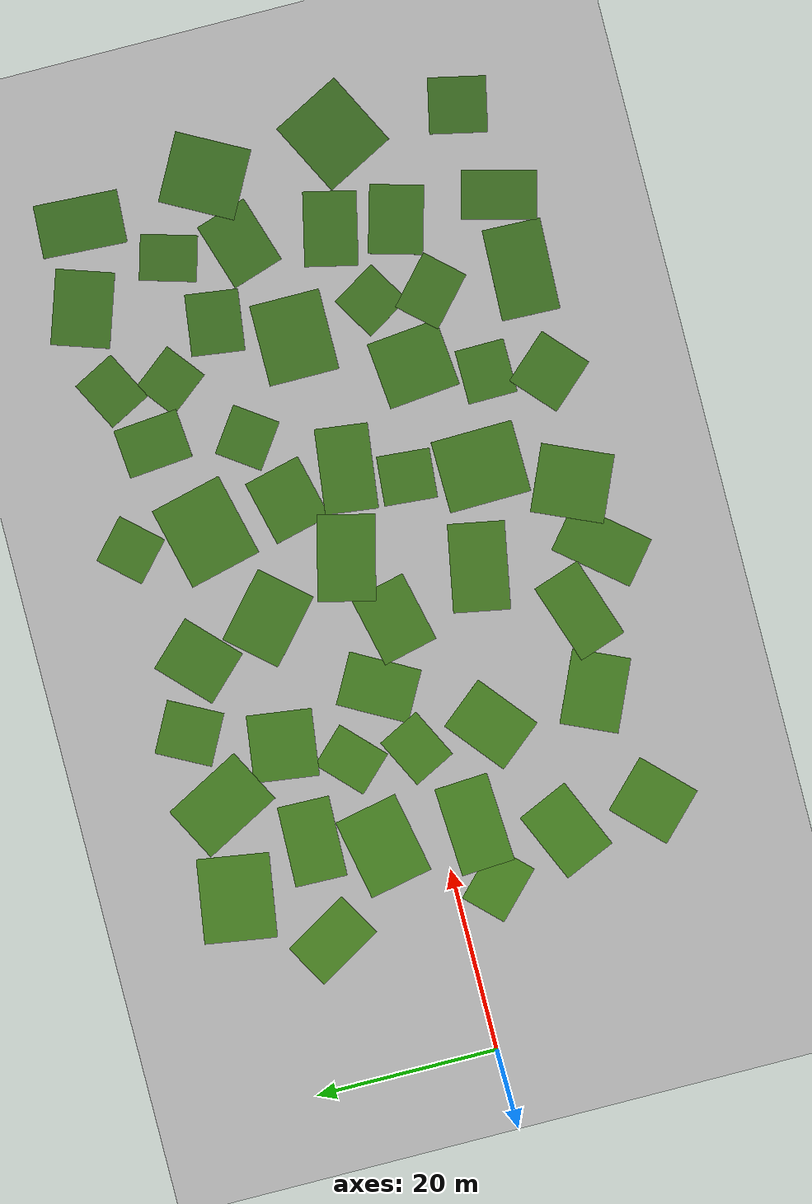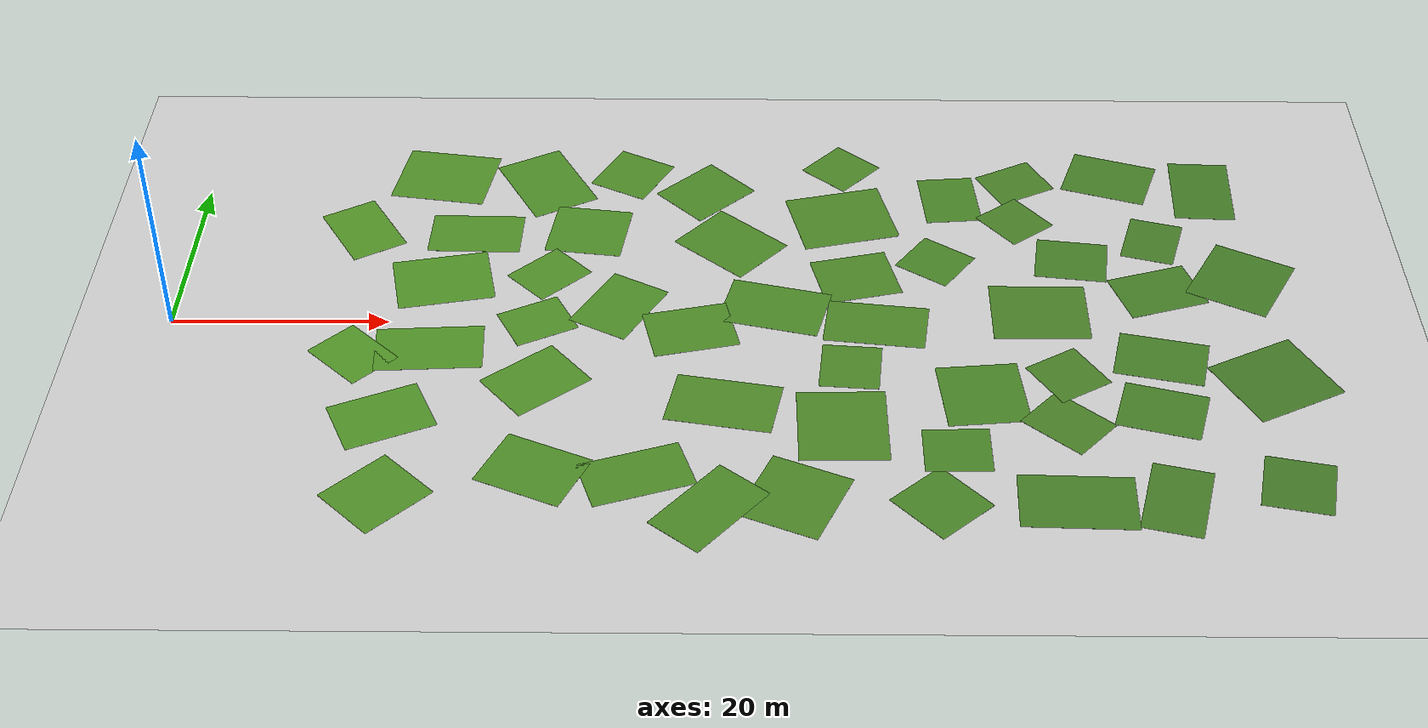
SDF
<?xml version="1.0" encoding="UTF-8"?>
<sdf version="1.9">
  <world name="default">
    <physics type="ode">
      <max_step_size>0.004</max_step_size>
      <real_time_factor>1.0</real_time_factor>
      <real_time_update_rate>250</real_time_update_rate>
    </physics>
    <gravity>0 0 -9.8</gravity>
    <magnetic_field>6e-06 2.3e-05 -4.2e-05</magnetic_field>
    <atmosphere type="adiabatic"/>
    <scene>
      <grid>false</grid>
      <ambient>0.4 0.4 0.4 1</ambient>
      <background>0.7 0.7 0.7 1</background>
      <shadows>true</shadows>
    </scene>
    <model name="ground_plane">
      <static>true</static>
      <link name="link">
        <collision name="collision">
          <geometry><plane><normal>0 0 1</normal><size>1 1</size></plane></geometry>
          <surface><friction><ode/></friction><bounce/><contact/></surface>
        </collision>
        <visual name="visual">
          <geometry><plane><normal>0 0 1</normal><size>500 500</size></plane></geometry>
          <material><ambient>0.8 0.8 0.8 1</ambient><diffuse>0.8 0.8 0.8 1</diffuse><specular>0.8 0.8 0.8 1</specular></material>
        </visual>
        <pose>0 0 0 0 -0 0</pose>
        <inertial><pose>0 0 0 0 -0 0</pose><mass>1</mass><inertia><ixx>1</ixx><ixy>0</ixy><ixz>0</ixz><iyy>1</iyy><iyz>0</iyz><izz>1</izz></inertia></inertial>
        <enable_wind>false</enable_wind>
      </link>
      <pose>0 0 0 0 -0 0</pose>
      <self_collide>false</self_collide>
    </model>

    <model name="m_0">
      <static>true</static>
      <pose>69.4 -23.7 0.0030 0 0 2.31</pose>
      <link name="link">
        <collision name="c"><geometry><box><size>6.4 6.1 0.0060</size></box></geometry></collision>
        <visual name="v"><geometry><box><size>6.4 6.1 0.0060</size></box></geometry>
          <material><ambient>0.23 0.46 0.12 1</ambient><diffuse>0.28 0.51 0.15 1</diffuse></material>
        </visual>
      </link>
    </model>
    <model name="m_1">
      <static>true</static>
      <pose>72.5 19.6 0.0030 0 0 0.09</pose>
      <link name="link">
        <collision name="c"><geometry><box><size>5.4 7.1 0.0060</size></box></geometry></collision>
        <visual name="v"><geometry><box><size>5.4 7.1 0.0060</size></box></geometry>
          <material><ambient>0.23 0.46 0.12 1</ambient><diffuse>0.28 0.51 0.15 1</diffuse></material>
        </visual>
      </link>
    </model>
    <model name="m_2">
      <static>true</static>
      <pose>33.6 0.3 0.0030 0 0 2.04</pose>
      <link name="link">
        <collision name="c"><geometry><box><size>5.1 6.0 0.0060</size></box></geometry></collision>
        <visual name="v"><geometry><box><size>5.1 6.0 0.0060</size></box></geometry>
          <material><ambient>0.26 0.51 0.12 1</ambient><diffuse>0.31 0.56 0.15 1</diffuse></material>
        </visual>
      </link>
    </model>
    <model name="m_3">
      <static>true</static>
      <pose>61.3 -14.0 0.0030 0 0 0.02</pose>
      <link name="link">
        <collision name="c"><geometry><box><size>7.9 9.0 0.0060</size></box></geometry></collision>
        <visual name="v"><geometry><box><size>7.9 9.0 0.0060</size></box></geometry>
          <material><ambient>0.24 0.47 0.12 1</ambient><diffuse>0.29 0.52 0.15 1</diffuse></material>
        </visual>
      </link>
    </model>
    <model name="m_4">
      <static>true</static>
      <pose>83.5 9.9 0.0030 0 0 3.01</pose>
      <link name="link">
        <collision name="c"><geometry><box><size>6.7 5.8 0.0060</size></box></geometry></collision>
        <visual name="v"><geometry><box><size>6.7 5.8 0.0060</size></box></geometry>
          <material><ambient>0.22 0.44 0.12 1</ambient><diffuse>0.27 0.49 0.15 1</diffuse></material>
        </visual>
      </link>
    </model>
    <model name="m_5">
      <static>true</static>
      <pose>43.6 -20.4 0.0030 0 0 1.90</pose>
      <link name="link">
        <collision name="c"><geometry><box><size>5.5 9.2 0.0060</size></box></geometry></collision>
        <visual name="v"><geometry><box><size>5.5 9.2 0.0060</size></box></geometry>
          <material><ambient>0.25 0.49 0.12 1</ambient><diffuse>0.30 0.54 0.15 1</diffuse></material>
        </visual>
      </link>
    </model>
    <model name="m_6">
      <static>true</static>
      <pose>61.9 16.5 0.0030 0 0 1.81</pose>
      <link name="link">
        <collision name="c"><geometry><box><size>8.1 9.3 0.0060</size></box></geometry></collision>
        <visual name="v"><geometry><box><size>8.1 9.3 0.0060</size></box></geometry>
          <material><ambient>0.24 0.47 0.12 1</ambient><diffuse>0.29 0.52 0.15 1</diffuse></material>
        </visual>
      </link>
    </model>
    <model name="m_7">
      <static>true</static>
      <pose>34.8 -19.9 0.0030 0 0 1.15</pose>
      <link name="link">
        <collision name="c"><geometry><box><size>6.4 8.2 0.0060</size></box></geometry></collision>
        <visual name="v"><geometry><box><size>6.4 8.2 0.0060</size></box></geometry>
          <material><ambient>0.25 0.50 0.12 1</ambient><diffuse>0.30 0.55 0.15 1</diffuse></material>
        </visual>
      </link>
    </model>
    <model name="m_8">
      <static>true</static>
      <pose>99.1 7.0 0.0030 0 0 2.65</pose>
      <link name="link">
        <collision name="c"><geometry><box><size>7.8 8.4 0.0060</size></box></geometry></collision>
        <visual name="v"><geometry><box><size>7.8 8.4 0.0060</size></box></geometry>
          <material><ambient>0.21 0.43 0.12 1</ambient><diffuse>0.26 0.48 0.15 1</diffuse></material>
        </visual>
      </link>
    </model>
    <model name="m_9">
      <static>true</static>
      <pose>81.0 -13.5 0.0030 0 0 0.84</pose>
      <link name="link">
        <collision name="c"><geometry><box><size>5.2 6.6 0.0060</size></box></geometry></collision>
        <visual name="v"><geometry><box><size>5.2 6.6 0.0060</size></box></geometry>
          <material><ambient>0.23 0.45 0.12 1</ambient><diffuse>0.28 0.50 0.15 1</diffuse></material>
        </visual>
      </link>
    </model>
    <model name="m_10">
      <static>true</static>
      <pose>32.9 22.1 0.0030 0 0 2.06</pose>
      <link name="link">
        <collision name="c"><geometry><box><size>9.4 6.6 0.0060</size></box></geometry></collision>
        <visual name="v"><geometry><box><size>9.4 6.6 0.0060</size></box></geometry>
          <material><ambient>0.25 0.50 0.12 1</ambient><diffuse>0.30 0.55 0.15 1</diffuse></material>
        </visual>
      </link>
    </model>
    <model name="m_11">
      <static>true</static>
      <pose>48.6 20.7 0.0030 0 0 0.77</pose>
      <link name="link">
        <collision name="c"><geometry><box><size>7.3 6.3 0.0060</size></box></geometry></collision>
        <visual name="v"><geometry><box><size>7.3 6.3 0.0060</size></box></geometry>
          <material><ambient>0.24 0.48 0.12 1</ambient><diffuse>0.29 0.53 0.15 1</diffuse></material>
        </visual>
      </link>
    </model>
    <model name="m_12">
      <static>true</static>
      <pose>24.3 6.4 0.0030 0 0 0.20</pose>
      <link name="link">
        <collision name="c"><geometry><box><size>9.0 7.1 0.0060</size></box></geometry></collision>
        <visual name="v"><geometry><box><size>9.0 7.1 0.0060</size></box></geometry>
          <material><ambient>0.26 0.52 0.12 1</ambient><diffuse>0.31 0.57 0.15 1</diffuse></material>
        </visual>
      </link>
    </model>
    <model name="m_13">
      <static>true</static>
      <pose>89.4 -11.8 0.0030 0 0 2.87</pose>
      <link name="link">
        <collision name="c"><geometry><box><size>7.5 5.9 0.0060</size></box></geometry></collision>
        <visual name="v"><geometry><box><size>7.5 5.9 0.0060</size></box></geometry>
          <material><ambient>0.22 0.44 0.12 1</ambient><diffuse>0.27 0.49 0.15 1</diffuse></material>
        </visual>
      </link>
    </model>
    <model name="m_14">
      <static>true</static>
      <pose>79.8 2.0 0.0030 0 0 0.00</pose>
      <link name="link">
        <collision name="c"><geometry><box><size>8.9 7.7 0.0060</size></box></geometry></collision>
        <visual name="v"><geometry><box><size>8.9 7.7 0.0060</size></box></geometry>
          <material><ambient>0.23 0.45 0.12 1</ambient><diffuse>0.28 0.50 0.15 1</diffuse></material>
        </visual>
      </link>
    </model>
    <model name="m_15">
      <static>true</static>
      <pose>55.4 2.5 0.0030 0 0 1.33</pose>
      <link name="link">
        <collision name="c"><geometry><box><size>6.3 9.4 0.0060</size></box></geometry></collision>
        <visual name="v"><geometry><box><size>6.3 9.4 0.0060</size></box></geometry>
          <material><ambient>0.24 0.48 0.12 1</ambient><diffuse>0.29 0.53 0.15 1</diffuse></material>
        </visual>
      </link>
    </model>
    <model name="m_16">
      <static>true</static>
      <pose>34.1 -8.1 0.0030 0 0 0.69</pose>
      <link name="link">
        <collision name="c"><geometry><box><size>7.9 6.2 0.0060</size></box></geometry></collision>
        <visual name="v"><geometry><box><size>7.9 6.2 0.0060</size></box></geometry>
          <material><ambient>0.26 0.51 0.12 1</ambient><diffuse>0.31 0.56 0.15 1</diffuse></material>
        </visual>
      </link>
    </model>
    <model name="m_17">
      <static>true</static>
      <pose>21.0 -13.1 0.0030 0 0 0.42</pose>
      <link name="link">
        <collision name="c"><geometry><box><size>8.3 6.1 0.0060</size></box></geometry></collision>
        <visual name="v"><geometry><box><size>8.3 6.1 0.0060</size></box></geometry>
          <material><ambient>0.26 0.52 0.12 1</ambient><diffuse>0.31 0.57 0.15 1</diffuse></material>
        </visual>
      </link>
    </model>
    <model name="m_18">
      <static>true</static>
      <pose>50.9 -11.1 0.0030 0 0 1.39</pose>
      <link name="link">
        <collision name="c"><geometry><box><size>6.2 9.6 0.0060</size></box></geometry></collision>
        <visual name="v"><geometry><box><size>6.2 9.6 0.0060</size></box></geometry>
          <material><ambient>0.25 0.48 0.12 1</ambient><diffuse>0.30 0.53 0.15 1</diffuse></material>
        </visual>
      </link>
    </model>
    <model name="m_19">
      <static>true</static>
      <pose>97.4 21.3 0.0030 0 0 1.52</pose>
      <link name="link">
        <collision name="c"><geometry><box><size>9.2 5.8 0.0060</size></box></geometry></collision>
        <visual name="v"><geometry><box><size>9.2 5.8 0.0060</size></box></geometry>
          <material><ambient>0.21 0.43 0.12 1</ambient><diffuse>0.26 0.48 0.15 1</diffuse></material>
        </visual>
      </link>
    </model>
    <model name="m_20">
      <static>true</static>
      <pose>37.5 14.2 0.0030 0 0 3.01</pose>
      <link name="link">
        <collision name="c"><geometry><box><size>7.3 7.1 0.0060</size></box></geometry></collision>
        <visual name="v"><geometry><box><size>7.3 7.1 0.0060</size></box></geometry>
          <material><ambient>0.25 0.50 0.12 1</ambient><diffuse>0.30 0.55 0.15 1</diffuse></material>
        </visual>
      </link>
    </model>
    <model name="m_21">
      <static>true</static>
      <pose>64.7 0.1 0.0030 0 0 3.02</pose>
      <link name="link">
        <collision name="c"><geometry><box><size>9.3 5.8 0.0060</size></box></geometry></collision>
        <visual name="v"><geometry><box><size>9.3 5.8 0.0060</size></box></geometry>
          <material><ambient>0.24 0.47 0.12 1</ambient><diffuse>0.29 0.52 0.15 1</diffuse></material>
        </visual>
      </link>
    </model>
    <model name="m_22">
      <static>true</static>
      <pose>99.7 -21.3 0.0030 0 0 2.93</pose>
      <link name="link">
        <collision name="c"><geometry><box><size>6.1 6.3 0.0060</size></box></geometry></collision>
        <visual name="v"><geometry><box><size>6.1 6.3 0.0060</size></box></geometry>
          <material><ambient>0.21 0.42 0.12 1</ambient><diffuse>0.26 0.47 0.15 1</diffuse></material>
        </visual>
      </link>
    </model>
    <model name="m_23">
      <static>true</static>
      <pose>90.2 -4.7 0.0030 0 0 2.92</pose>
      <link name="link">
        <collision name="c"><geometry><box><size>8.1 5.8 0.0060</size></box></geometry></collision>
        <visual name="v"><geometry><box><size>8.1 5.8 0.0060</size></box></geometry>
          <material><ambient>0.22 0.44 0.12 1</ambient><diffuse>0.27 0.49 0.15 1</diffuse></material>
        </visual>
      </link>
    </model>
    <model name="m_24">
      <static>true</static>
      <pose>88.5 23.3 0.0030 0 0 1.25</pose>
      <link name="link">
        <collision name="c"><geometry><box><size>6.4 8.2 0.0060</size></box></geometry></collision>
        <visual name="v"><geometry><box><size>6.4 8.2 0.0060</size></box></geometry>
          <material><ambient>0.22 0.44 0.12 1</ambient><diffuse>0.27 0.49 0.15 1</diffuse></material>
        </visual>
      </link>
    </model>
    <model name="m_25">
      <static>true</static>
      <pose>24.1 -3.7 0.0030 0 0 1.63</pose>
      <link name="link">
        <collision name="c"><geometry><box><size>5.9 9.8 0.0060</size></box></geometry></collision>
        <visual name="v"><geometry><box><size>5.9 9.8 0.0060</size></box></geometry>
          <material><ambient>0.26 0.52 0.12 1</ambient><diffuse>0.31 0.57 0.15 1</diffuse></material>
        </visual>
      </link>
    </model>
    <model name="m_26">
      <static>true</static>
      <pose>100.0 -7.5 0.0030 0 0 2.05</pose>
      <link name="link">
        <collision name="c"><geometry><box><size>8.3 8.9 0.0060</size></box></geometry></collision>
        <visual name="v"><geometry><box><size>8.3 8.9 0.0060</size></box></geometry>
          <material><ambient>0.21 0.42 0.12 1</ambient><diffuse>0.26 0.47 0.15 1</diffuse></material>
        </visual>
      </link>
    </model>
    <model name="m_27">
      <static>true</static>
      <pose>79.1 22.5 0.0030 0 0 0.48</pose>
      <link name="link">
        <collision name="c"><geometry><box><size>6.0 5.1 0.0060</size></box></geometry></collision>
        <visual name="v"><geometry><box><size>6.0 5.1 0.0060</size></box></geometry>
          <material><ambient>0.23 0.45 0.12 1</ambient><diffuse>0.28 0.50 0.15 1</diffuse></material>
        </visual>
      </link>
    </model>
    <model name="m_28">
      <static>true</static>
      <pose>73.8 -9.7 0.0030 0 0 1.67</pose>
      <link name="link">
        <collision name="c"><geometry><box><size>7.9 7.4 0.0060</size></box></geometry></collision>
        <visual name="v"><geometry><box><size>7.9 7.4 0.0060</size></box></geometry>
          <material><ambient>0.23 0.46 0.12 1</ambient><diffuse>0.28 0.51 0.15 1</diffuse></material>
        </visual>
      </link>
    </model>
    <model name="m_29">
      <static>true</static>
      <pose>51.2 12.3 0.0030 0 0 0.85</pose>
      <link name="link">
        <collision name="c"><geometry><box><size>6.7 8.5 0.0060</size></box></geometry></collision>
        <visual name="v"><geometry><box><size>6.7 8.5 0.0060</size></box></geometry>
          <material><ambient>0.24 0.48 0.12 1</ambient><diffuse>0.29 0.53 0.15 1</diffuse></material>
        </visual>
      </link>
    </model>
    <model name="m_30">
      <static>true</static>
      <pose>71.1 -17.1 0.0030 0 0 0.01</pose>
      <link name="link">
        <collision name="c"><geometry><box><size>5.9 5.4 0.0060</size></box></geometry></collision>
        <visual name="v"><geometry><box><size>5.9 5.4 0.0060</size></box></geometry>
          <material><ambient>0.23 0.46 0.12 1</ambient><diffuse>0.28 0.51 0.15 1</diffuse></material>
        </visual>
      </link>
    </model>
    <model name="m_31">
      <static>true</static>
      <pose>21.8 -23.0 0.0030 0 0 0.79</pose>
      <link name="link">
        <collision name="c"><geometry><box><size>7.2 6.6 0.0060</size></box></geometry></collision>
        <visual name="v"><geometry><box><size>7.2 6.6 0.0060</size></box></geometry>
          <material><ambient>0.26 0.51 0.12 1</ambient><diffuse>0.31 0.56 0.15 1</diffuse></material>
        </visual>
      </link>
    </model>
    <model name="m_32">
      <static>true</static>
      <pose>22.8 23.1 0.0030 0 0 2.99</pose>
      <link name="link">
        <collision name="c"><geometry><box><size>9.2 7.9 0.0060</size></box></geometry></collision>
        <visual name="v"><geometry><box><size>9.2 7.9 0.0060</size></box></geometry>
          <material><ambient>0.26 0.51 0.12 1</ambient><diffuse>0.31 0.56 0.15 1</diffuse></material>
        </visual>
      </link>
    </model>
    <model name="m_33">
      <static>true</static>
      <pose>57.1 -23.1 0.0030 0 0 2.73</pose>
      <link name="link">
        <collision name="c"><geometry><box><size>7.5 8.0 0.0060</size></box></geometry></collision>
        <visual name="v"><geometry><box><size>7.5 8.0 0.0060</size></box></geometry>
          <material><ambient>0.24 0.47 0.12 1</ambient><diffuse>0.29 0.52 0.15 1</diffuse></material>
        </visual>
      </link>
    </model>
    <model name="m_34">
      <static>true</static>
      <pose>89.2 -23.2 0.0030 0 0 2.89</pose>
      <link name="link">
        <collision name="c"><geometry><box><size>5.3 8.2 0.0060</size></box></geometry></collision>
        <visual name="v"><geometry><box><size>5.3 8.2 0.0060</size></box></geometry>
          <material><ambient>0.22 0.43 0.12 1</ambient><diffuse>0.27 0.48 0.15 1</diffuse></material>
        </visual>
      </link>
    </model>
    <model name="m_35">
      <static>true</static>
      <pose>47.7 -0.8 0.0030 0 0 1.80</pose>
      <link name="link">
        <collision name="c"><geometry><box><size>6.2 7.9 0.0060</size></box></geometry></collision>
        <visual name="v"><geometry><box><size>6.2 7.9 0.0060</size></box></geometry>
          <material><ambient>0.25 0.49 0.12 1</ambient><diffuse>0.30 0.54 0.15 1</diffuse></material>
        </visual>
      </link>
    </model>
    <model name="m_36">
      <static>true</static>
      <pose>70.6 9.6 0.0030 0 0 0.96</pose>
      <link name="link">
        <collision name="c"><geometry><box><size>5.3 5.6 0.0060</size></box></geometry></collision>
        <visual name="v"><geometry><box><size>5.3 5.6 0.0060</size></box></geometry>
          <material><ambient>0.23 0.46 0.12 1</ambient><diffuse>0.28 0.51 0.15 1</diffuse></material>
        </visual>
      </link>
    </model>
    <model name="m_37">
      <static>true</static>
      <pose>80.8 -23.5 0.0030 0 0 1.54</pose>
      <link name="link">
        <collision name="c"><geometry><box><size>6.4 10.0 0.0060</size></box></geometry></collision>
        <visual name="v"><geometry><box><size>6.4 10.0 0.0060</size></box></geometry>
          <material><ambient>0.22 0.44 0.12 1</ambient><diffuse>0.27 0.49 0.15 1</diffuse></material>
        </visual>
      </link>
    </model>
    <model name="m_38">
      <static>true</static>
      <pose>26.7 13.7 0.0030 0 0 3.12</pose>
      <link name="link">
        <collision name="c"><geometry><box><size>8.8 5.7 0.0060</size></box></geometry></collision>
        <visual name="v"><geometry><box><size>8.8 5.7 0.0060</size></box></geometry>
          <material><ambient>0.26 0.51 0.12 1</ambient><diffuse>0.31 0.56 0.15 1</diffuse></material>
        </visual>
      </link>
    </model>
    <model name="m_39">
      <static>true</static>
      <pose>91.5 13.0 0.0030 0 0 1.29</pose>
      <link name="link">
        <collision name="c"><geometry><box><size>6.2 5.0 0.0060</size></box></geometry></collision>
        <visual name="v"><geometry><box><size>6.2 5.0 0.0060</size></box></geometry>
          <material><ambient>0.22 0.43 0.12 1</ambient><diffuse>0.27 0.48 0.15 1</diffuse></material>
        </visual>
      </link>
    </model>
    <model name="m_40">
      <static>true</static>
      <pose>41.0 2.6 0.0030 0 0 2.64</pose>
      <link name="link">
        <collision name="c"><geometry><box><size>5.9 8.0 0.0060</size></box></geometry></collision>
        <visual name="v"><geometry><box><size>5.9 8.0 0.0060</size></box></geometry>
          <material><ambient>0.25 0.50 0.12 1</ambient><diffuse>0.30 0.55 0.15 1</diffuse></material>
        </visual>
      </link>
    </model>
    <model name="m_41">
      <static>true</static>
      <pose>62.0 24.8 0.0030 0 0 2.41</pose>
      <link name="link">
        <collision name="c"><geometry><box><size>5.4 5.5 0.0060</size></box></geometry></collision>
        <visual name="v"><geometry><box><size>5.4 5.5 0.0060</size></box></geometry>
          <material><ambient>0.24 0.47 0.12 1</ambient><diffuse>0.29 0.52 0.15 1</diffuse></material>
        </visual>
      </link>
    </model>
    <model name="m_42">
      <static>true</static>
      <pose>91.1 5.2 0.0030 0 0 1.88</pose>
      <link name="link">
        <collision name="c"><geometry><box><size>5.9 7.7 0.0060</size></box></geometry></collision>
        <visual name="v"><geometry><box><size>5.9 7.7 0.0060</size></box></geometry>
          <material><ambient>0.22 0.44 0.12 1</ambient><diffuse>0.27 0.49 0.15 1</diffuse></material>
        </visual>
      </link>
    </model>
    <model name="m_43">
      <static>true</static>
      <pose>15.8 14.2 0.0030 0 0 2.10</pose>
      <link name="link">
        <collision name="c"><geometry><box><size>8.0 5.4 0.0060</size></box></geometry></collision>
        <visual name="v"><geometry><box><size>8.0 5.4 0.0060</size></box></geometry>
          <material><ambient>0.27 0.52 0.12 1</ambient><diffuse>0.32 0.57 0.15 1</diffuse></material>
        </visual>
      </link>
    </model>
    <model name="m_44">
      <static>true</static>
      <pose>34.2 7.4 0.0030 0 0 0.77</pose>
      <link name="link">
        <collision name="c"><geometry><box><size>6.1 5.1 0.0060</size></box></geometry></collision>
        <visual name="v"><geometry><box><size>6.1 5.1 0.0060</size></box></geometry>
          <material><ambient>0.26 0.51 0.12 1</ambient><diffuse>0.31 0.56 0.15 1</diffuse></material>
        </visual>
      </link>
    </model>
    <model name="m_45">
      <static>true</static>
      <pose>49.9 -24.5 0.0030 0 0 2.45</pose>
      <link name="link">
        <collision name="c"><geometry><box><size>5.6 9.3 0.0060</size></box></geometry></collision>
        <visual name="v"><geometry><box><size>5.6 9.3 0.0060</size></box></geometry>
          <material><ambient>0.24 0.48 0.12 1</ambient><diffuse>0.29 0.53 0.15 1</diffuse></material>
        </visual>
      </link>
    </model>
    <model name="m_46">
      <static>true</static>
      <pose>62.2 -6.0 0.0030 0 0 1.49</pose>
      <link name="link">
        <collision name="c"><geometry><box><size>5.8 5.4 0.0060</size></box></geometry></collision>
        <visual name="v"><geometry><box><size>5.8 5.4 0.0060</size></box></geometry>
          <material><ambient>0.24 0.47 0.12 1</ambient><diffuse>0.29 0.52 0.15 1</diffuse></material>
        </visual>
      </link>
    </model>
    <model name="m_47">
      <static>true</static>
      <pose>41.3 23.6 0.0030 0 0 2.66</pose>
      <link name="link">
        <collision name="c"><geometry><box><size>5.9 6.3 0.0060</size></box></geometry></collision>
        <visual name="v"><geometry><box><size>5.9 6.3 0.0060</size></box></geometry>
          <material><ambient>0.25 0.49 0.12 1</ambient><diffuse>0.30 0.54 0.15 1</diffuse></material>
        </visual>
      </link>
    </model>
    <model name="m_48">
      <static>true</static>
      <pose>63.0 7.1 0.0030 0 0 0.24</pose>
      <link name="link">
        <collision name="c"><geometry><box><size>7.3 6.4 0.0060</size></box></geometry></collision>
        <visual name="v"><geometry><box><size>7.3 6.4 0.0060</size></box></geometry>
          <material><ambient>0.24 0.47 0.12 1</ambient><diffuse>0.29 0.52 0.15 1</diffuse></material>
        </visual>
      </link>
    </model>
    <model name="m_49">
      <static>true</static>
      <pose>17.3 -4.6 0.0030 0 0 0.80</pose>
      <link name="link">
        <collision name="c"><geometry><box><size>5.2 6.6 0.0060</size></box></geometry></collision>
        <visual name="v"><geometry><box><size>5.2 6.6 0.0060</size></box></geometry>
          <material><ambient>0.27 0.53 0.12 1</ambient><diffuse>0.32 0.58 0.15 1</diffuse></material>
        </visual>
      </link>
    </model>
    <model name="m_50">
      <static>true</static>
      <pose>81.6 -7.0 0.0030 0 0 2.12</pose>
      <link name="link">
        <collision name="c"><geometry><box><size>5.6 5.4 0.0060</size></box></geometry></collision>
        <visual name="v"><geometry><box><size>5.6 5.4 0.0060</size></box></geometry>
          <material><ambient>0.23 0.45 0.12 1</ambient><diffuse>0.28 0.50 0.15 1</diffuse></material>
        </visual>
      </link>
    </model>
    <model name="m_51">
      <static>true</static>
      <pose>78.6 16.1 0.0030 0 0 2.24</pose>
      <link name="link">
        <collision name="c"><geometry><box><size>5.5 5.1 0.0060</size></box></geometry></collision>
        <visual name="v"><geometry><box><size>5.5 5.1 0.0060</size></box></geometry>
          <material><ambient>0.23 0.45 0.12 1</ambient><diffuse>0.28 0.50 0.15 1</diffuse></material>
        </visual>
      </link>
    </model>
    <light name="sunUTC" type="directional">
      <pose>0 0 500 0 -0 0</pose>
      <cast_shadows>true</cast_shadows>
      <intensity>1</intensity>
      <direction>0.001 0.625 -0.78</direction>
      <diffuse>0.904 0.904 0.904 1</diffuse>
      <specular>0.271 0.271 0.271 1</specular>
      <attenuation><range>2000</range><linear>0</linear><constant>1</constant><quadratic>0</quadratic></attenuation>
      <spot><inner_angle>0</inner_angle><outer_angle>0</outer_angle><falloff>0</falloff></spot>
    </light>
    <spherical_coordinates>
      <surface_model>EARTH_WGS84</surface_model>
      <world_frame_orientation>ENU</world_frame_orientation>
      <latitude_deg>47.397971057728974</latitude_deg>
      <longitude_deg> 8.546163739800146</longitude_deg>
      <elevation>0</elevation>
    </spherical_coordinates>
  </world>
</sdf>
